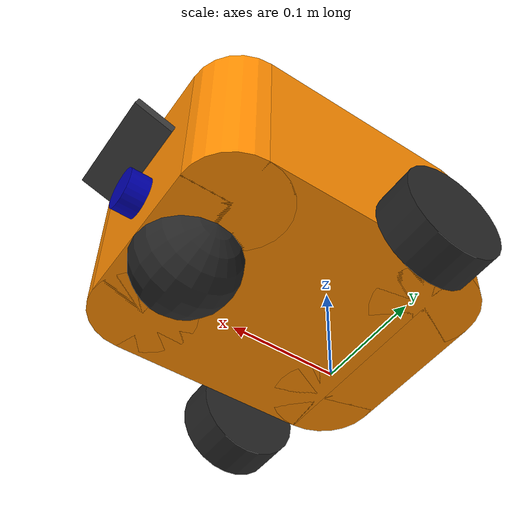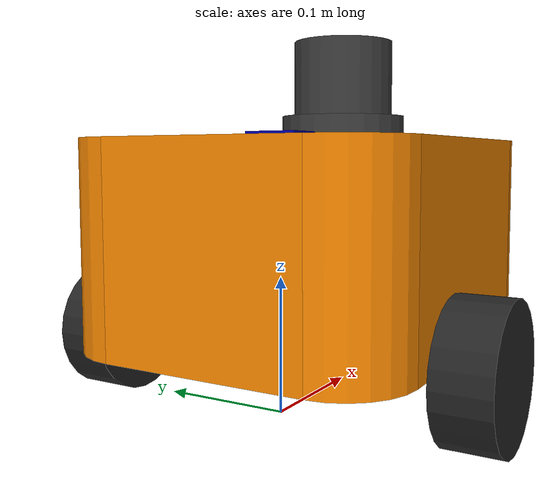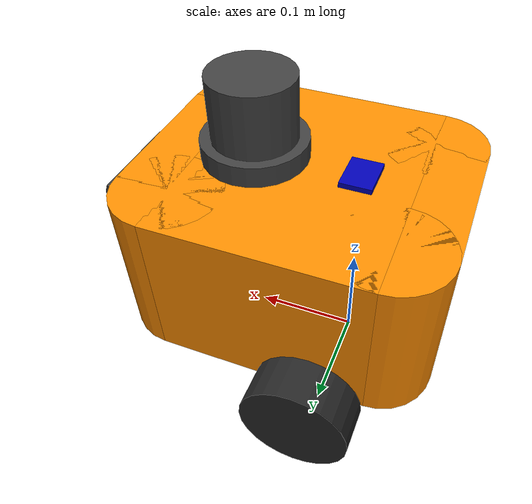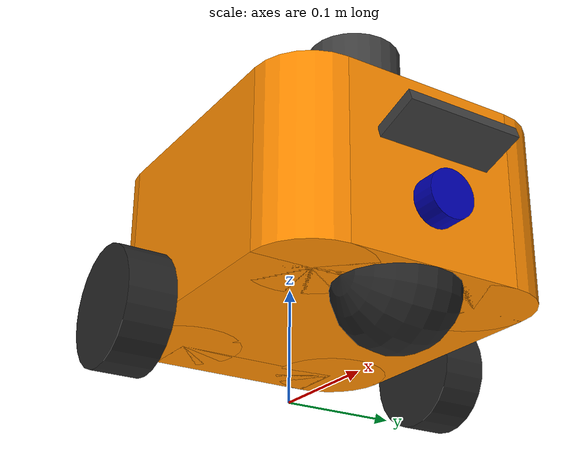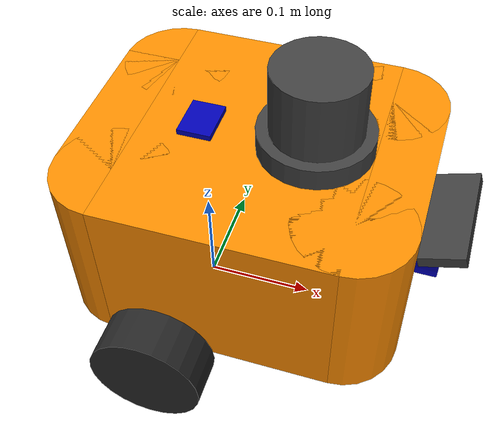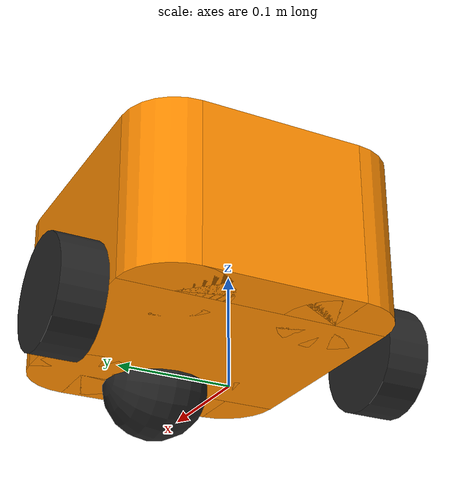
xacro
<?xml version="1.0"?>
<robot name="mbot" xmlns:xacro="http://www.ros.org/wiki/xacro">

  <xacro:include filename="$(find mbot_description)/urdf/mbot_gazebo_description.xacro"/>

  <material name="black">
        <color rgba="0.15 0.15 0.15 1"/>
    </material>

<material name="blue">
        <color rgba="0 0 0.7 1"/>
    </material>

    <material name="green">
        <color rgba="0 0.7 0 1"/>
    </material>

    <material name="red">
        <color rgba="0.7 0 0 1"/>
    </material>

  <material name="grey">
        <color rgba="0.25 0.25 0.25 1"/>
    </material>

  <material name="orange">
        <color rgba="1 0.55 0 1"/>
    </material>

    <material name="white">
        <color rgba="0.9 0.9 0.9 1"/>
    </material>

  <!-- chassis property -->
  <xacro:property name="chassis_link_color" value="orange"/>
  <xacro:property name="sizeX" value="0.30"/>
  <xacro:property name="sizeY" value="0.25"/>
  <xacro:property name="sizeZ" value="0.15"/>
  <xacro:property name="m1" value="5"/>

  <!-- wheel property -->
  <xacro:property name="wheel_link_color" value="black"/>
  <xacro:property name="wheelR" value="0.05"/>
  <xacro:property name="wheelL" value="0.04"/>
  <xacro:property name="casterR" value="0.05"/>
  <xacro:property name="m2" value="0.2"/>

  <xacro:property name="sonar_link_color" value="blue"/>
  <xacro:property name="linecam_link_color" value="grey"/>
  <xacro:property name="lidar_link_color" value="grey"/>
  <xacro:property name="m3" value="0.4"/>
  <xacro:property name="imu_link_color" value="blue"/>

  <!-- BASE LINK FRAME (OR WORLD FRAME) -->

  <link name="base_link"/>

  <!-- CHASSIS LINK FRAME -->

  <joint name="chassis_joint" type="fixed">
    <origin xyz="0 0 0.05" rpy="0 0 0"/>
    <parent link="base_link"/>
    <child link="chassis_link"/>
  </joint>

  <link name="chassis_link">
    <visual>
      <origin xyz="0.05 0 0.075" rpy="0 0 0"/>
      <geometry>
        <box size="0.2 0.25 0.15" />
      </geometry>
      <material name="${chassis_link_color}"/>
    </visual>
    <visual>
      <origin xyz="0.15 0.075 0.075" rpy="0 0 0"/>
      <geometry>
        <cylinder radius="0.05" length="0.15" />
      </geometry>
      <material name="${chassis_link_color}"/>
    </visual>
    <visual>
      <origin xyz="0.15 -0.075 0.075" rpy="0 0 0"/>
      <geometry>
        <cylinder radius="0.05" length="0.15" />
      </geometry>
      <material name="${chassis_link_color}"/>
    </visual>
    <visual>
      <origin xyz="-0.05 0.075 0.075" rpy="0 0 0"/>
      <geometry>
        <cylinder radius="0.05" length="0.15" />
      </geometry>
      <material name="${chassis_link_color}"/>
    </visual>
    <visual>
      <origin xyz="-0.05 -0.075 0.075" rpy="0 0 0"/>
      <geometry>
        <cylinder radius="0.05" length="0.15" />
      </geometry>
      <material name="${chassis_link_color}"/>
    </visual>
    <visual>
      <origin xyz="0.175 0 0.075" rpy="0 0 0"/>
      <geometry>
        <box size="0.05 0.15 0.15" />
      </geometry>
      <material name="${chassis_link_color}"/>
    </visual>
    <visual>
      <origin xyz="-0.075 0 0.075" rpy="0 0 0"/>
      <geometry>
        <box size="0.05 0.15 0.15" />
      </geometry>
      <material name="${chassis_link_color}"/>
    </visual>

    <collision>
      <origin xyz="0.05 0 0.075" rpy="0 0 0"/>
      <geometry>
        <box size="0.30 0.25 0.15"/>
      </geometry>
    </collision>

    <inertial>
      <mass value="${m1}"/>
      <origin xyz="0.05 0 0.075" rpy="0 0 0"/>
      <inertia
        ixx="${(m1/12)*(sizeY+sizeZ)}" ixy="0.0" ixz="0.0"
        iyy="${(m1/12)*(sizeX+sizeZ)}" iyz="0.0"
        izz="${(m1/12)*(sizeX+sizeY)}"
      />
    </inertial>

  </link>

  <!-- LEFT WHEEL LINK FRAME -->

  <joint name="left_wheel_joint" type="continuous">
        <parent link="chassis_link"/>
        <child link="left_wheel_link"/>
        <origin xyz="0 0.15 0" rpy="${-pi/2} 0 0"/>
        <axis xyz="0 0 1"/>
    </joint>

    <link name="left_wheel_link">
    <visual>
      <origin xyz="0 0 0" rpy="0 0 0"/>
      <geometry>
        <cylinder radius="0.05" length="0.04" />
      </geometry>
      <material name="${wheel_link_color}"/>
    </visual>

    <collision>
      <origin xyz="0 0 0" rpy="0 0 0"/>
      <geometry>
        <cylinder radius="0.05" length="0.04" />
      </geometry>
    </collision>

    <inertial>
      <mass value="${m2}"/>
      <origin xyz="0 0 0" rpy="0 0 0"/>
      <inertia
        ixx="${(m2/12)*((3*wheelR*wheelR)+(wheelL*wheelL))}" ixy="0.0" ixz="0.0"
        iyy="${(m2/12)*((3*wheelR*wheelR)+(wheelL*wheelL))}" iyz="0.0"
        izz="${(m2/2)*(wheelR*wheelR)}"
      />
    </inertial>
    </link>

  <!-- RIGHT WHEEL LINK FRAME -->

    <joint name="right_wheel_joint" type="continuous">
        <parent link="chassis_link"/>
        <child link="right_wheel_link"/>
        <origin xyz="0 -0.15 0" rpy="${-pi/2} 0 0"/>
        <axis xyz="0 0 1"/>
    </joint>

    <link name="right_wheel_link">
    <visual>
      <origin xyz="0 0 0" rpy="0 0 0"/>
      <geometry>
        <cylinder radius="0.05" length="0.04" />
      </geometry>
      <material name="${wheel_link_color}"/>
    </visual>

    <collision>
      <origin xyz="0 0 0" rpy="0 0 0"/>
      <geometry>
        <cylinder radius="0.05" length="0.04" />
      </geometry>
    </collision>

    <inertial>
      <mass value="${m2}"/>
      <origin xyz="0 0 0" rpy="0 0 0"/>
      <inertia
        ixx="${(m2/12)*((3*wheelR*wheelR)+(wheelL*wheelL))}" ixy="0.0" ixz="0.0"
        iyy="${(m2/12)*((3*wheelR*wheelR)+(wheelL*wheelL))}" iyz="0.0"
        izz="${(m2/2)*(wheelR*wheelR)}"
      />
    </inertial>
    </link>

  <!-- CASTER WHEEL LINK FRAME -->
    <joint name="caster_joint" type="fixed">
        <parent link="chassis_link"/>
        <child link="caster_wheel_link"/>
        <origin xyz="0.15 0 0" rpy="${pi/2} 0 0"/>
        <axis xyz="0 0 0"/>
    </joint>

    <link name="caster_wheel_link">
    <visual>
      <origin xyz="0 0 0" rpy="0 0 0"/>
      <geometry>
        <sphere radius="0.05" />
      </geometry>
      <material name="${wheel_link_color}"/>
    </visual>

    <collision>
      <origin xyz="0 0 0" rpy="0 0 0"/>
      <geometry>
        <sphere radius="0.05" />
      </geometry>
    </collision>

    <inertial>
      <mass value="${m2}"/>
      <origin xyz="0 0 0" rpy="0 0 0"/>
      <inertia
        ixx="${(2*m2*casterR*casterR)/5}" ixy="0.0" ixz="0.0"
        iyy="${(2*m2*casterR*casterR)/5}" iyz="0.0"
        izz="${(2*m2*casterR*casterR)/5}"
      />
    </inertial>
    </link>

  <!-- LIDAR LINK FRAME -->

    <joint name="lidar_joint" type="fixed">
        <parent link="chassis_link"/>
        <child link="lidar_link"/>
        <origin xyz="0.1 0 0.2" rpy="0 0 0"/>
        <axis xyz="0 0 0"/>
    </joint>

    <link name="lidar_link">
    <visual>
      <origin xyz="0 0 0" rpy="0 0 0"/>
      <geometry>
        <cylinder radius="0.04" length="0.06" />
      </geometry>
      <material name="${lidar_link_color}"/>
    </visual>
    <visual>
      <origin xyz="0 0 -0.04" rpy="0 0 0"/>
      <geometry>
        <cylinder radius="0.05" length="0.02" />
      </geometry>
      <material name="${lidar_link_color}"/>
    </visual>

    <collision>
      <origin xyz="0 0 -0.01" rpy="0 0 0"/>
      <geometry>
        <cylinder radius="0.05" length="0.08" />
      </geometry>
    </collision>

    <inertial>
      <mass value="${m3}"/>
      <origin xyz="0 0 -0.01" rpy="0 0 0"/>
      <inertia
        ixx="${(m3/12)*((3*0.05*0.05)+(0.08*0.08))}" ixy="0.0" ixz="0.0"
        iyy="${(m3/12)*((3*0.05*0.05)+(0.08*0.08))}" iyz="0.0"
        izz="${(m3*0.05*0.05)/2}"
      />
    </inertial>
    </link>

  <!-- SONAR LINK FRAME -->

    <joint name="sonar_joint" type="fixed">
        <parent link="chassis_link"/>
        <child link="sonar_link"/>
        <origin xyz="0.22 0 0.05" rpy="0 0 0"/>
        <axis xyz="0 0 0"/>
    </joint>

    <link name="sonar_link">
    <visual>
      <origin xyz="-0.02 0 0" rpy="0 ${pi/2} 0"/>
      <geometry>
        <cylinder radius="0.02" length="0.04" />
      </geometry>
      <material name="${sonar_link_color}"/>
    </visual>

    <collision>
      <origin xyz="-0.02 0 0" rpy="0 ${pi/2} 0"/>
      <geometry>
        <cylinder radius="0.02" length="0.04" />
      </geometry>
    </collision>

    <inertial>
      <mass value="0.001"/>
      <origin xyz="0 0 0" rpy="0 0 0"/>
      <inertia
        ixx="0.000000000001" ixy="0.0" ixz="0.0"
        iyy="0.000000000001" iyz="0.0"
        izz="0.000000000001"
      />
    </inertial>
    </link>

  <!-- IMU LINK FRAME -->

    <joint name="imu_joint" type="fixed">
        <parent link="chassis_link"/>
        <child link="imu_link"/>
        <origin xyz="0 0 0.16" rpy="0 0 0"/>
        <axis xyz="0 0 0"/>
    </joint>

    <link name="imu_link">
    <visual>
      <origin xyz="0 0 -0.015" rpy="0 0 0"/>
      <geometry>
        <box size="0.03 0.04 0.02" />
      </geometry>
      <material name="${imu_link_color}"/>
    </visual>

    <collision>
      <origin xyz="0 0 0.005" rpy="0 0 0"/>
      <geometry>
        <box size="0.03 0.04 0.01" />
      </geometry>
    </collision>

    <inertial>
      <mass value="0.001"/>
      <origin xyz="0 0 0" rpy="0 0 0"/>
      <inertia
        ixx="0.000000000001" ixy="0.0" ixz="0.0"
        iyy="0.000000000001" iyz="0.0"
        izz="0.000000000001"
      />
    </inertial>
    </link>

  <!-- LINE SENSOR LINK FRAME -->

    <joint name="linecam_joint" type="fixed">
        <parent link="chassis_link"/>
        <child link="linecam_link"/>
        <origin xyz="0.22 0 0.10" rpy="0 ${pi/2.5} 0"/>
        <axis xyz="0 0 0"/>
    </joint>

    <link name="linecam_link">
    <visual>
      <origin xyz="0 0 0" rpy="0 0 0"/>
      <geometry>
        <box size="0.01 0.1 0.04" />
      </geometry>
      <material name="${linecam_link_color}"/>
    </visual>

    <collision>
      <origin xyz="0 0 0" rpy="0 0 0"/>
      <geometry>
        <box size="0.01 0.1 0.04" />
      </geometry>
    </collision>

    <inertial>
      <mass value="0.005"/>
      <origin xyz="0 0 0" rpy="0 0 0"/>
      <inertia
        ixx="0.000000000025" ixy="0.0" ixz="0.0"
        iyy="0.000000000025" iyz="0.0"
        izz="0.000000000025"
      />
    </inertial>
    </link>

</robot>
